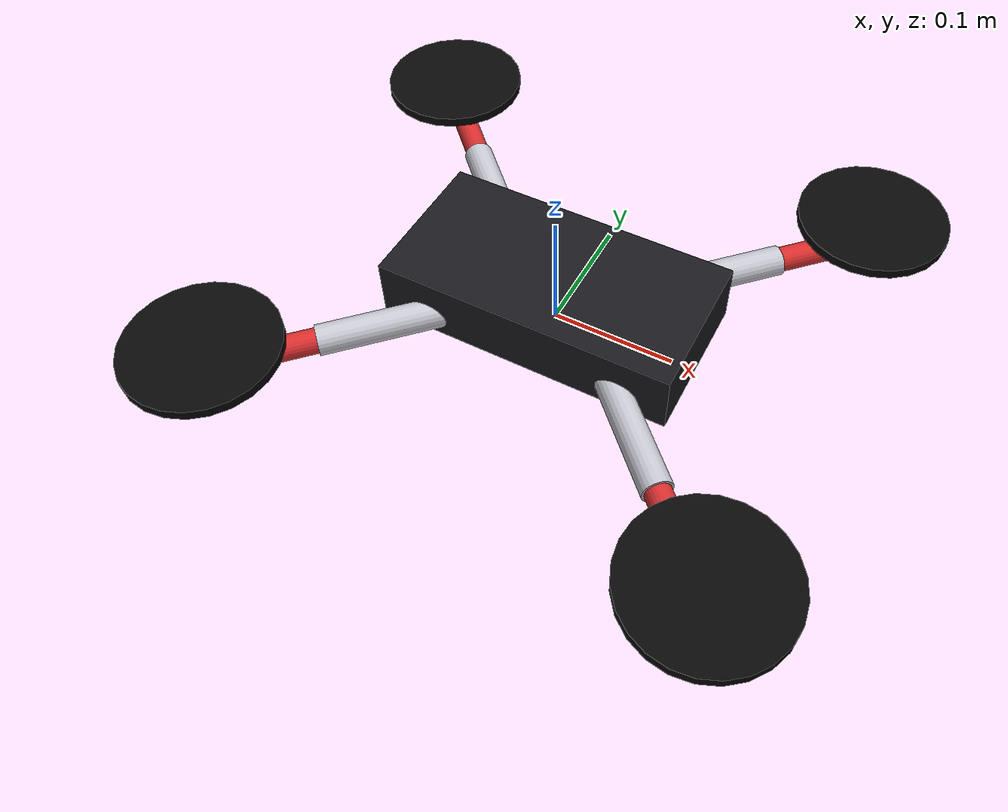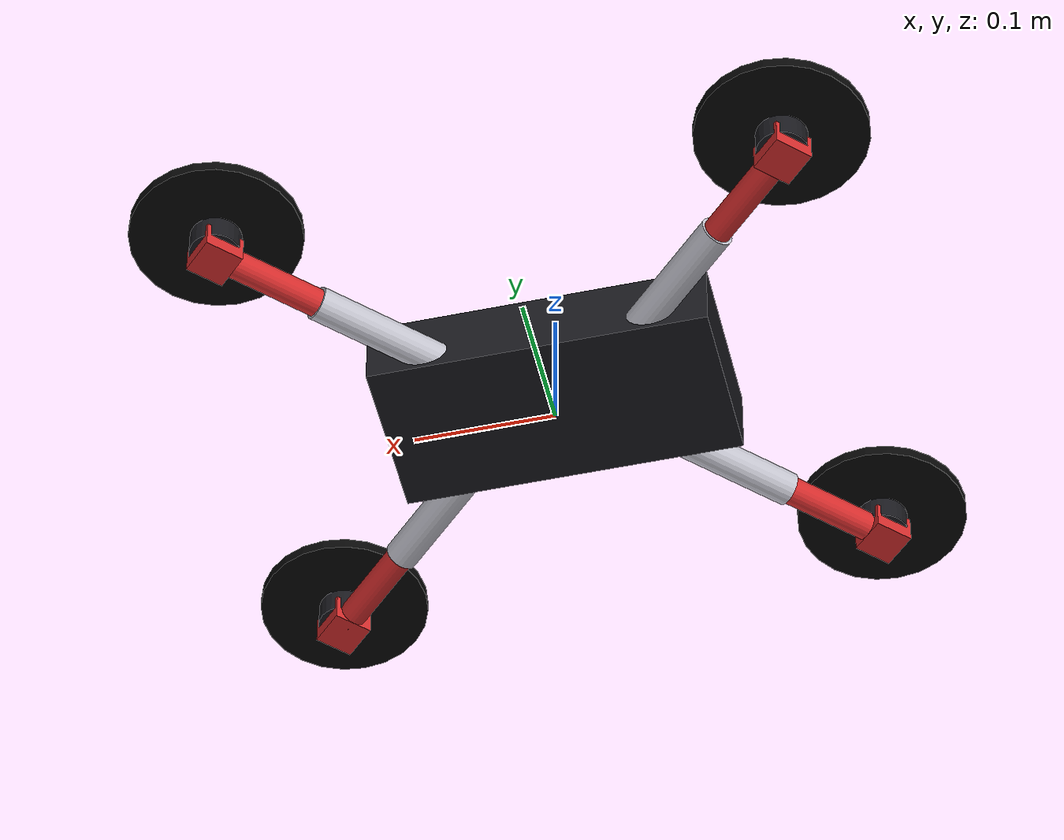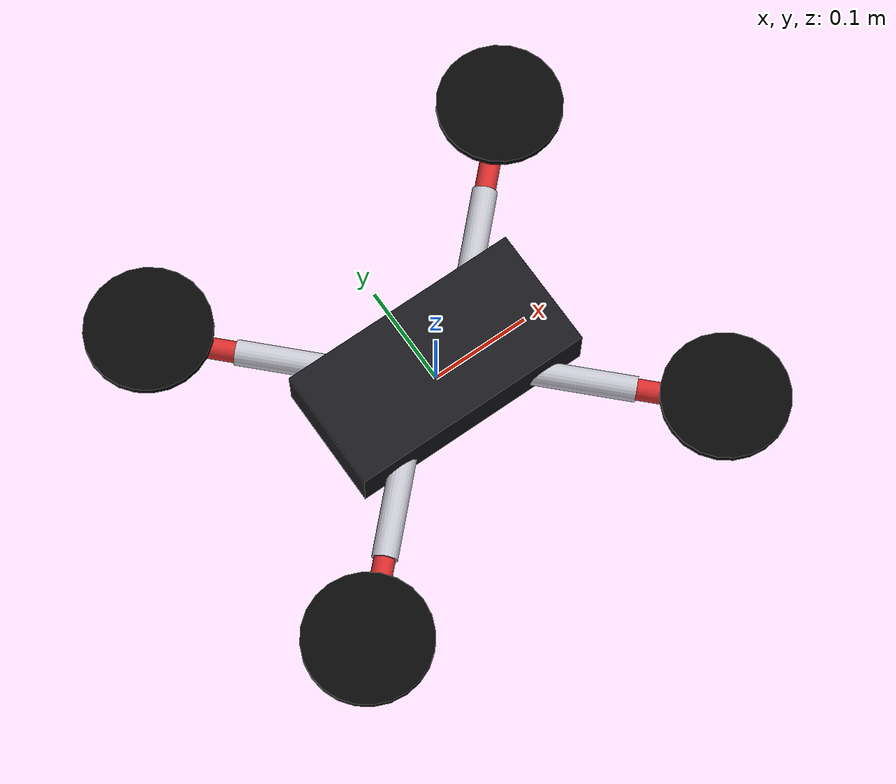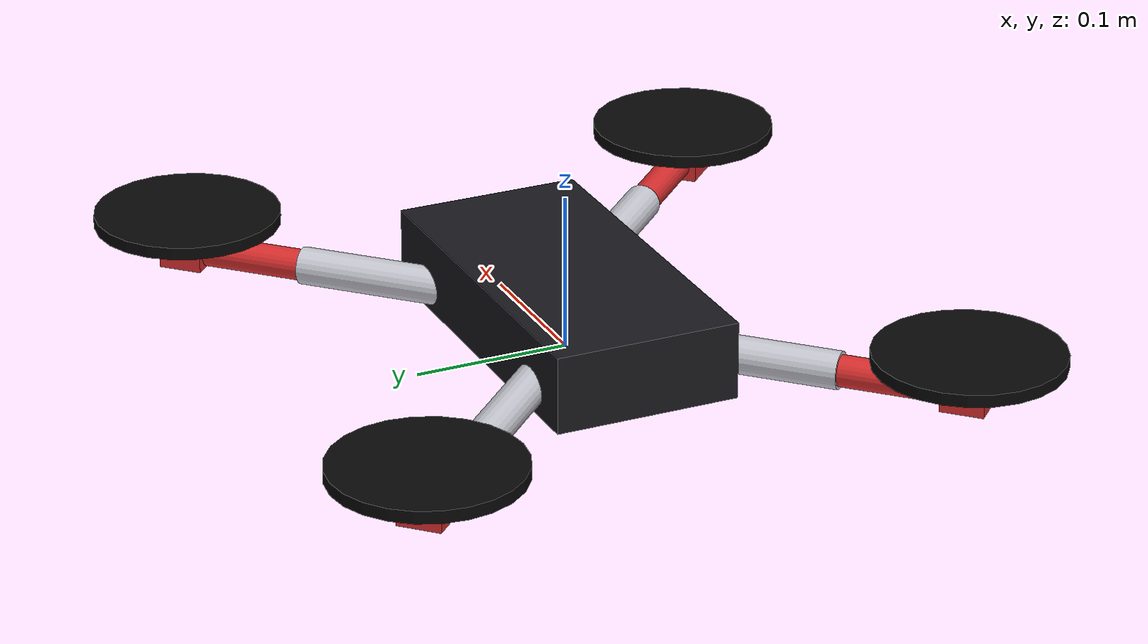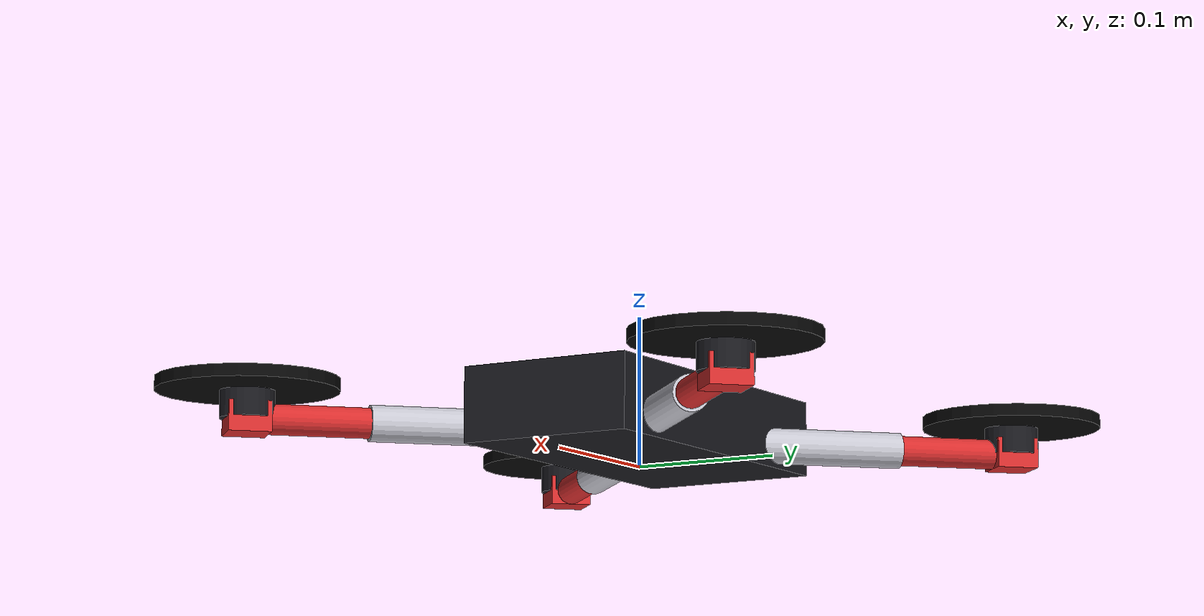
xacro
<?xml version="1.0"?>
<robot name="transformable_quad_gp_vectoring_leveled" xmlns:xacro="http://www.ros.org/wiki/xacro">

  <xacro:arg name="robot_name" default="transformable_quad_gp_vectoring_leveled"/>

  <xacro:arg name="body_length" default="0.24"/>
  <xacro:arg name="body_width" default="0.12"/>
  <xacro:arg name="body_height" default="0.05"/>

  <xacro:arg name="body_mass" default="1.10"/>
  <xacro:arg name="hinge_mass" default="0.02"/>
  <xacro:arg name="arm_mass" default="0.08"/>
  <xacro:arg name="tip_mass" default="0.05"/>
  <xacro:arg name="rotor_mass" default="0.02"/>
  <xacro:arg name="tilt_link_mass" default="0.002"/>

  <xacro:arg name="arm_radius" default="0.012"/>
  <xacro:arg name="arm_length" default="0.12"/>
  <xacro:arg name="tip_radius" default="0.010"/>
  <xacro:arg name="tip_length" default="0.08"/>
  <xacro:arg name="rotor_radius" default="0.06"/>
  <xacro:arg name="rotor_thickness" default="0.008"/>

  <xacro:arg name="hub_x" default="0.055"/>
  <xacro:arg name="hub_y" default="0.035"/>
  <xacro:arg name="hub_z" default="0.02"/>

  <xacro:arg name="front_yaw" default="0.78539816339"/>
  <xacro:arg name="rear_yaw" default="2.35619449019"/>
  <xacro:arg name="body_z" default="0.03"/>
  <xacro:arg name="rotor_mount_z" default="0.01"/>

  <xacro:arg name="front_left_tilt_x" default="0.0"/>
  <xacro:arg name="front_left_tilt_y" default="0.0"/>
  <xacro:arg name="front_right_tilt_x" default="0.0"/>
  <xacro:arg name="front_right_tilt_y" default="0.0"/>
  <xacro:arg name="rear_left_tilt_x" default="0.0"/>
  <xacro:arg name="rear_left_tilt_y" default="0.0"/>
  <xacro:arg name="rear_right_tilt_x" default="0.0"/>
  <xacro:arg name="rear_right_tilt_y" default="0.0"/>

  <xacro:property name="body_length" value="$(arg body_length)"/>
  <xacro:property name="body_width" value="$(arg body_width)"/>
  <xacro:property name="body_height" value="$(arg body_height)"/>
  <xacro:property name="body_mass" value="$(arg body_mass)"/>
  <xacro:property name="hinge_mass" value="$(arg hinge_mass)"/>
  <xacro:property name="arm_mass" value="$(arg arm_mass)"/>
  <xacro:property name="tip_mass" value="$(arg tip_mass)"/>
  <xacro:property name="rotor_mass" value="$(arg rotor_mass)"/>
  <xacro:property name="tilt_link_mass" value="$(arg tilt_link_mass)"/>
  <xacro:property name="arm_radius" value="$(arg arm_radius)"/>
  <xacro:property name="arm_length" value="$(arg arm_length)"/>
  <xacro:property name="tip_radius" value="$(arg tip_radius)"/>
  <xacro:property name="tip_length" value="$(arg tip_length)"/>
  <xacro:property name="rotor_radius" value="$(arg rotor_radius)"/>
  <xacro:property name="rotor_thickness" value="$(arg rotor_thickness)"/>
  <xacro:property name="hub_x" value="$(arg hub_x)"/>
  <xacro:property name="hub_y" value="$(arg hub_y)"/>
  <xacro:property name="hub_z" value="$(arg hub_z)"/>
  <xacro:property name="front_yaw" value="$(arg front_yaw)"/>
  <xacro:property name="rear_yaw" value="$(arg rear_yaw)"/>
  <xacro:property name="body_z" value="$(arg body_z)"/>
  <xacro:property name="rotor_mount_z" value="$(arg rotor_mount_z)"/>
  <xacro:property name="arm_half" value="${arm_length / 2.0}"/>
  <xacro:property name="tip_half" value="${tip_length / 2.0}"/>
  <xacro:property name="imu_z" value="${body_z + body_height / 2.0 + 0.005}"/>

  <material name="body_dark"><color rgba="0.10 0.10 0.12 1.0"/></material>
  <material name="arm_gray"><color rgba="0.78 0.78 0.82 1.0"/></material>
  <material name="joint_red"><color rgba="0.85 0.18 0.18 1.0"/></material>
  <material name="rotor_black"><color rgba="0.03 0.03 0.03 1.0"/></material>

  <xacro:macro name="box_inertial" params="mass x y z">
    <inertial>
      <origin xyz="0 0 0" rpy="0 0 0"/>
      <mass value="${mass}"/>
      <inertia ixx="${mass * (y*y + z*z) / 12.0}" ixy="0.0" ixz="0.0"
               iyy="${mass * (x*x + z*z) / 12.0}" iyz="0.0"
               izz="${mass * (x*x + y*y) / 12.0}"/>
    </inertial>
  </xacro:macro>

  <xacro:macro name="cyl_inertial_x" params="mass radius length">
    <inertial>
      <origin xyz="0 0 0" rpy="0 0 0"/>
      <mass value="${mass}"/>
      <inertia ixx="${0.5 * mass * radius * radius}" ixy="0.0" ixz="0.0"
               iyy="${mass * (3*radius*radius + length*length) / 12.0}" iyz="0.0"
               izz="${mass * (3*radius*radius + length*length) / 12.0}"/>
    </inertial>
  </xacro:macro>

  <link name="base_link">
    <visual>
      <origin xyz="0 0 ${body_z}" rpy="0 0 0"/>
      <geometry><box size="${body_length} ${body_width} ${body_height}"/></geometry>
      <material name="body_dark"/>
    </visual>
    <collision>
      <origin xyz="0 0 ${body_z}" rpy="0 0 0"/>
      <geometry><box size="${body_length} ${body_width} ${body_height}"/></geometry>
    </collision>
    <xacro:box_inertial mass="${body_mass}" x="${body_length}" y="${body_width}" z="${body_height}"/>
  </link>

  <link name="imu_link">
    <inertial>
      <origin xyz="0 0 0" rpy="0 0 0"/>
      <mass value="0.01"/>
      <inertia ixx="1e-5" ixy="0" ixz="0" iyy="1e-5" iyz="0" izz="1e-5"/>
    </inertial>
  </link>

  <joint name="imu_joint" type="fixed">
    <parent link="base_link"/>
    <child link="imu_link"/>
    <origin xyz="0 0 ${imu_z}" rpy="0 0 0"/>
  </joint>

  <xacro:macro name="arm_chain" params="prefix mount_x mount_y mount_z base_yaw tilt_x tilt_y">

    <link name="${prefix}_hinge_link">
      <visual>
        <origin xyz="0 0 0" rpy="0 0 0"/>
        <geometry><box size="0.02 0.02 0.02"/></geometry>
        <material name="joint_red"/>
      </visual>
      <collision>
        <origin xyz="0 0 0" rpy="0 0 0"/>
        <geometry><box size="0.02 0.02 0.02"/></geometry>
      </collision>
      <xacro:box_inertial mass="${hinge_mass}" x="0.02" y="0.02" z="0.02"/>
    </link>

    <joint name="${prefix}_yaw_mount_joint" type="fixed">
      <parent link="base_link"/>
      <child link="${prefix}_hinge_link"/>
      <origin xyz="${mount_x} ${mount_y} ${mount_z}" rpy="0 0 ${base_yaw}"/>
    </joint>

    <link name="${prefix}_arm_link">
      <visual>
        <origin xyz="${arm_half} 0 0" rpy="0 1.57079632679 0"/>
        <geometry><cylinder radius="${arm_radius}" length="${arm_length}"/></geometry>
        <material name="arm_gray"/>
      </visual>
      <collision>
        <origin xyz="${arm_half} 0 0" rpy="0 1.57079632679 0"/>
        <geometry><cylinder radius="${arm_radius}" length="${arm_length}"/></geometry>
      </collision>
      <xacro:cyl_inertial_x mass="${arm_mass}" radius="${arm_radius}" length="${arm_length}"/>
    </link>

    <joint name="${prefix}_fold_joint" type="revolute">
      <parent link="${prefix}_hinge_link"/>
      <child link="${prefix}_arm_link"/>
      <origin xyz="0 0 0" rpy="0 0 0"/>
      <axis xyz="0 0 1"/>
      <limit lower="-1.20" upper="1.20" effort="20.0" velocity="2.0"/>
      <dynamics damping="0.2" friction="0.05"/>
    </joint>

    <link name="${prefix}_tip_link">
      <visual>
        <origin xyz="${tip_half} 0 0" rpy="0 1.57079632679 0"/>
        <geometry><cylinder radius="${tip_radius}" length="${tip_length}"/></geometry>
        <material name="joint_red"/>
      </visual>
      <collision>
        <origin xyz="${tip_half} 0 0" rpy="0 1.57079632679 0"/>
        <geometry><cylinder radius="${tip_radius}" length="${tip_length}"/></geometry>
      </collision>
      <xacro:cyl_inertial_x mass="${tip_mass}" radius="${tip_radius}" length="${tip_length}"/>
    </link>

    <joint name="${prefix}_extend_joint" type="prismatic">
      <parent link="${prefix}_arm_link"/>
      <child link="${prefix}_tip_link"/>
      <origin xyz="${arm_length} 0 0" rpy="0 0 0"/>
      <axis xyz="1 0 0"/>
      <limit lower="0.0" upper="0.10" effort="20.0" velocity="0.5"/>
      <dynamics damping="5.0" friction="0.5"/>
    </joint>

    <link name="${prefix}_tilt_mount_x_link">
      <inertial>
        <origin xyz="0 0 0" rpy="0 0 0"/>
        <mass value="${tilt_link_mass}"/>
        <inertia ixx="1e-6" ixy="0" ixz="0" iyy="1e-6" iyz="0" izz="1e-6"/>
      </inertial>
    </link>

    <joint name="${prefix}_tilt_mount_x_joint" type="fixed">
      <parent link="${prefix}_tip_link"/>
      <child link="${prefix}_tilt_mount_x_link"/>
      <origin xyz="${tip_length} 0 0" rpy="0 0 0"/>
    </joint>

    <link name="${prefix}_tilt_mount_y_link">
      <visual>
        <origin xyz="0 0 0" rpy="0 0 0"/>
        <geometry><box size="0.028 0.028 0.020"/></geometry>
        <material name="joint_red"/>
      </visual>
      <collision>
        <origin xyz="0 0 0" rpy="0 0 0"/>
        <geometry><box size="0.028 0.028 0.020"/></geometry>
      </collision>
      <xacro:box_inertial mass="${tilt_link_mass}" x="0.028" y="0.028" z="0.020"/>
    </link>

    <joint name="${prefix}_tilt_x_joint" type="fixed">
      <parent link="${prefix}_tilt_mount_x_link"/>
      <child link="${prefix}_tilt_mount_y_link"/>
      <origin xyz="0 0 0" rpy="${tilt_x} 0 0"/>
    </joint>

    <link name="${prefix}_motor_link">
      <visual>
        <origin xyz="0 0 ${rotor_mount_z}" rpy="0 0 0"/>
        <geometry><cylinder radius="0.018" length="0.020"/></geometry>
        <material name="body_dark"/>
      </visual>
      <collision>
        <origin xyz="0 0 ${rotor_mount_z}" rpy="0 0 0"/>
        <geometry><cylinder radius="0.018" length="0.020"/></geometry>
      </collision>
      <inertial>
        <origin xyz="0 0 ${rotor_mount_z}" rpy="0 0 0"/>
        <mass value="${rotor_mass * 0.6}"/>
        <inertia ixx="5e-6" ixy="0" ixz="0" iyy="5e-6" iyz="0" izz="3e-6"/>
      </inertial>
    </link>

    <joint name="${prefix}_tilt_y_joint" type="fixed">
      <parent link="${prefix}_tilt_mount_y_link"/>
      <child link="${prefix}_motor_link"/>
      <origin xyz="0 0 0" rpy="0 ${tilt_y} 0"/>
    </joint>

    <link name="${prefix}_rotor_link">
      <visual>
        <origin xyz="0 0 ${rotor_mount_z + 0.012}" rpy="0 0 0"/>
        <geometry><cylinder radius="${rotor_radius}" length="${rotor_thickness}"/></geometry>
        <material name="rotor_black"/>
      </visual>
      <collision>
        <origin xyz="0 0 ${rotor_mount_z + 0.012}" rpy="0 0 0"/>
        <geometry><cylinder radius="${rotor_radius}" length="${rotor_thickness}"/></geometry>
      </collision>
      <inertial>
        <origin xyz="0 0 ${rotor_mount_z + 0.012}" rpy="0 0 0"/>
        <mass value="${rotor_mass}"/>
        <inertia
          ixx="${rotor_mass * (3*rotor_radius*rotor_radius + rotor_thickness*rotor_thickness) / 12.0}"
          ixy="0.0" ixz="0.0"
          iyy="${rotor_mass * (3*rotor_radius*rotor_radius + rotor_thickness*rotor_thickness) / 12.0}"
          iyz="0.0"
          izz="${0.5 * rotor_mass * rotor_radius * rotor_radius}"/>
      </inertial>
    </link>

    <joint name="${prefix}_rotor_spin_joint" type="continuous">
      <parent link="${prefix}_motor_link"/>
      <child link="${prefix}_rotor_link"/>
      <origin xyz="0 0 0" rpy="0 0 0"/>
      <axis xyz="0 0 1"/>
      <limit effort="2.0" velocity="3000.0"/>
      <dynamics damping="0.001" friction="0.0"/>
    </joint>

  </xacro:macro>

  <xacro:arm_chain prefix="front_left"  mount_x="${ hub_x}" mount_y="${ hub_y}"  mount_z="${hub_z}" base_yaw="${ front_yaw}" tilt_x="$(arg front_left_tilt_x)"  tilt_y="$(arg front_left_tilt_y)"/>
  <xacro:arm_chain prefix="front_right" mount_x="${ hub_x}" mount_y="${-hub_y}"  mount_z="${hub_z}" base_yaw="${-front_yaw}" tilt_x="$(arg front_right_tilt_x)" tilt_y="$(arg front_right_tilt_y)"/>
  <xacro:arm_chain prefix="rear_left"   mount_x="${-hub_x}" mount_y="${ hub_y}"  mount_z="${hub_z}" base_yaw="${ rear_yaw}" tilt_x="$(arg rear_left_tilt_x)"   tilt_y="$(arg rear_left_tilt_y)"/>
  <xacro:arm_chain prefix="rear_right"  mount_x="${-hub_x}" mount_y="${-hub_y}"  mount_z="${hub_z}" base_yaw="${-rear_yaw}" tilt_x="$(arg rear_right_tilt_x)"  tilt_y="$(arg rear_right_tilt_y)"/>

</robot>
